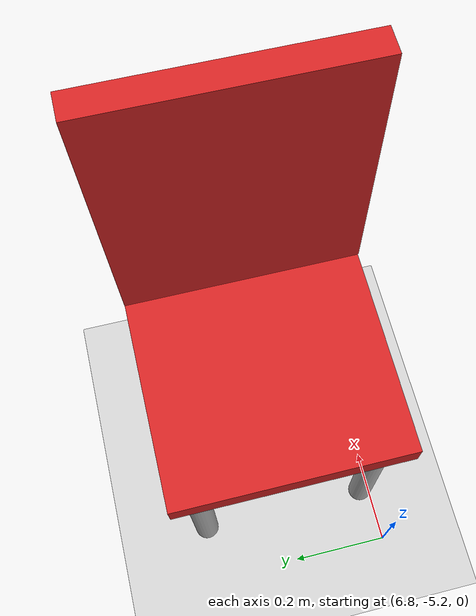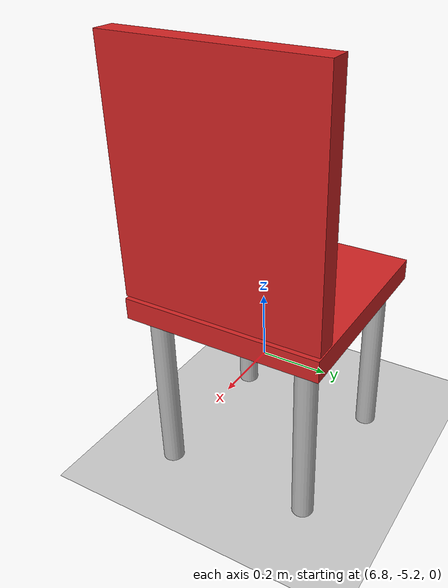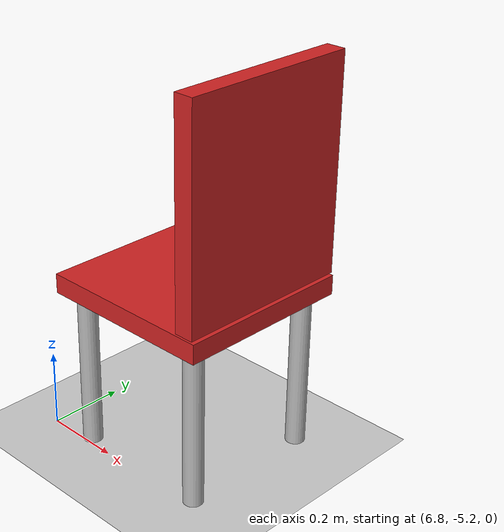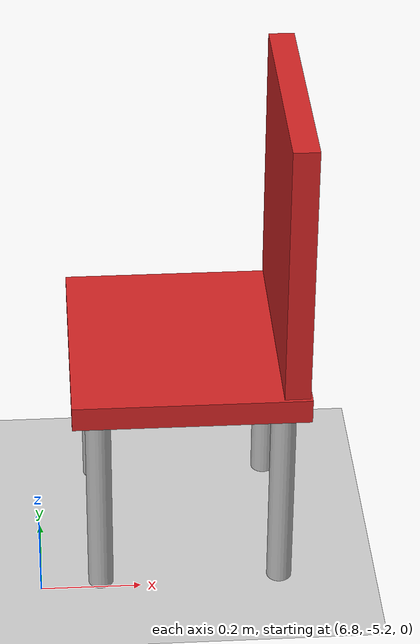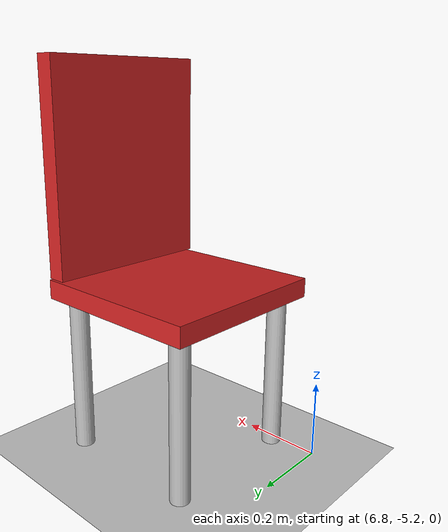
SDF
<?xml version="1.0" ?>
<sdf version="1.7">

  <world name="default">

    <!-- ================= PHYSICS ================= -->
    <physics type="ode">
      <gravity>0 0 -9.8</gravity>
    </physics>

    <!-- ================= LIGHT ================= -->
    <include>
      <uri>model://sun</uri>
    </include>

    <!-- ================= GROUND ================= -->
    <include>
      <uri>model://ground_plane</uri>
    </include>

    <!-- ================= CHAIR MODEL ================= -->
    <model name="t16_chW">
      <static>true</static>
      <pose>7.1 -5 0 0 0 1.5708</pose>

      <link name="link">

        <!-- Inertial -->
        <inertial>
          <mass>5.0</mass>
          <inertia>
            <ixx>0.1</ixx>
            <iyy>0.1</iyy>
            <izz>0.1</izz>
            <ixy>0</ixy>
            <ixz>0</ixz>
            <iyz>0</iyz>
          </inertia>
        </inertial>

        <!-- Seat -->
        <collision name="seat_collision">
          <pose>0 0 0.44 0 0 0</pose>
          <geometry>
            <box>
              <size>0.46 0.46 0.05</size>
            </box>
          </geometry>
        </collision>

        <visual name="seat">
          <pose>0 0 0.44 0 0 0</pose>
          <geometry>
            <box>
              <size>0.46 0.46 0.05</size>
            </box>
          </geometry>
          <material>
            <ambient>0.82 0.14 0.14 1</ambient>
            <diffuse>0.82 0.14 0.14 1</diffuse>
          </material>
        </visual>

        <!-- Back -->
        <collision name="back_collision">
          <pose>0 -0.2 0.74 0 0 0</pose>
          <geometry>
            <box>
              <size>0.46 0.05 0.54</size>
            </box>
          </geometry>
        </collision>

        <visual name="back">
          <pose>0 -0.2 0.74 0 0 0</pose>
          <geometry>
            <box>
              <size>0.46 0.05 0.54</size>
            </box>
          </geometry>
          <material>
            <ambient>0.82 0.14 0.14 1</ambient>
            <diffuse>0.82 0.14 0.14 1</diffuse>
          </material>
        </visual>

        <!-- Legs -->
        <!-- Leg 1 -->
        <collision name="l1_col">
          <pose>0.18 0.18 0.22 0 0 0</pose>
          <geometry>
            <cylinder>
              <radius>0.025</radius>
              <length>0.44</length>
            </cylinder>
          </geometry>
        </collision>

        <visual name="l1">
          <pose>0.18 0.18 0.22 0 0 0</pose>
          <geometry>
            <cylinder>
              <radius>0.025</radius>
              <length>0.44</length>
            </cylinder>
          </geometry>
        </visual>

        <!-- Leg 2 -->
        <collision name="l2_col">
          <pose>-0.18 0.18 0.22 0 0 0</pose>
          <geometry>
            <cylinder>
              <radius>0.025</radius>
              <length>0.44</length>
            </cylinder>
          </geometry>
        </collision>

        <visual name="l2">
          <pose>-0.18 0.18 0.22 0 0 0</pose>
          <geometry>
            <cylinder>
              <radius>0.025</radius>
              <length>0.44</length>
            </cylinder>
          </geometry>
        </visual>

        <!-- Leg 3 -->
        <collision name="l3_col">
          <pose>0.18 -0.18 0.22 0 0 0</pose>
          <geometry>
            <cylinder>
              <radius>0.025</radius>
              <length>0.44</length>
            </cylinder>
          </geometry>
        </collision>

        <visual name="l3">
          <pose>0.18 -0.18 0.22 0 0 0</pose>
          <geometry>
            <cylinder>
              <radius>0.025</radius>
              <length>0.44</length>
            </cylinder>
          </geometry>
        </visual>

        <!-- Leg 4 -->
        <collision name="l4_col">
          <pose>-0.18 -0.18 0.22 0 0 0</pose>
          <geometry>
            <cylinder>
              <radius>0.025</radius>
              <length>0.44</length>
            </cylinder>
          </geometry>
        </collision>

        <visual name="l4">
          <pose>-0.18 -0.18 0.22 0 0 0</pose>
          <geometry>
            <cylinder>
              <radius>0.025</radius>
              <length>0.44</length>
            </cylinder>
          </geometry>
        </visual>

      </link>
    </model>

  </world>
</sdf>
